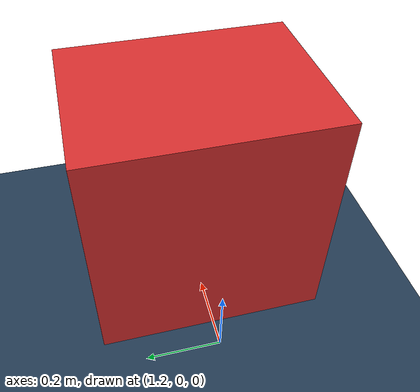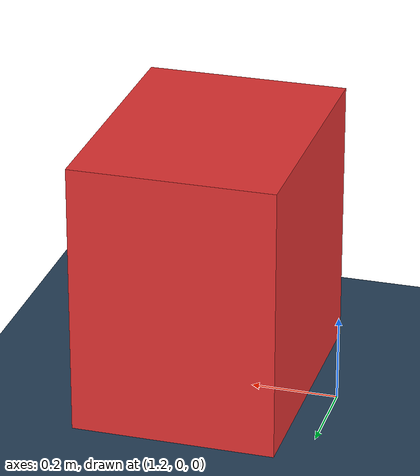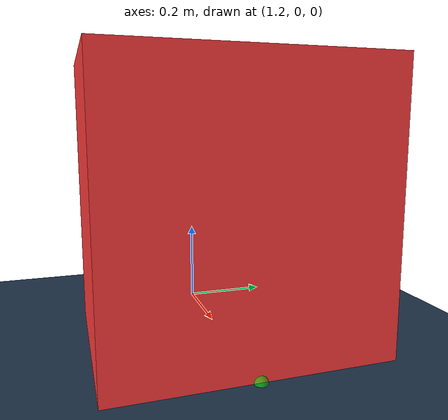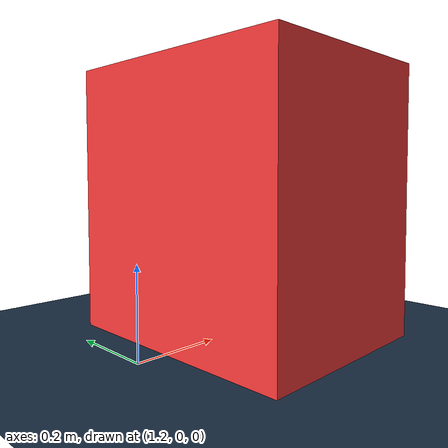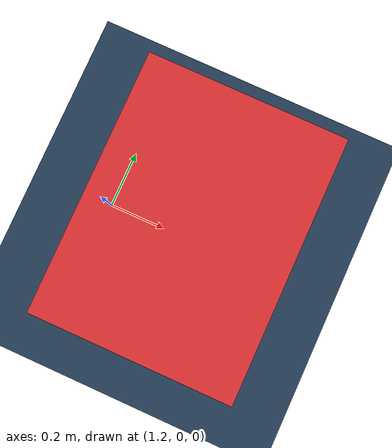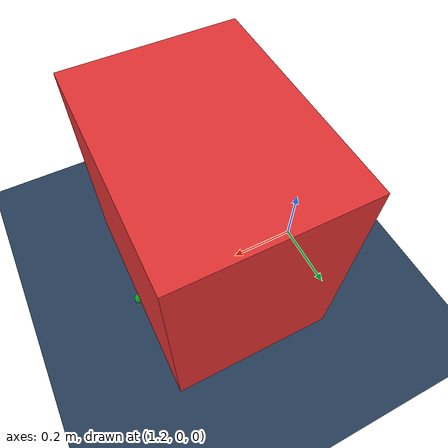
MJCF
<mujoco model="path_following_final">
  <asset>
    <texture type="skybox" builtin="gradient" rgb1="0.6 0.6 0.6" rgb2="0 0 0" width="512" height="512"/>
    <texture name="grid" type="2d" builtin="checker" rgb1="0.1 0.2 0.3" rgb2="0.2 0.3 0.4" width="300" height="300" mark="edge" markrgb="0.8 0.8 0.8"/>
    <material name="grid" texture="grid" texrepeat="1 1" texuniform="true" reflectance="0.2"/>
  </asset>

  <visual>
    <global offwidth="800" offheight="600"/>
  </visual>

  <worldbody>
    <light pos="0 0 3" dir="0 0 -1" diffuse="0.8 0.8 0.8" specular="0.2 0.2 0.2" directional="true"/>
    <geom name="floor" size="5 5 0.1" type="plane" material="grid" solimp="0.9 0.95 0.001 0.5 2" condim="4"/>

    <body name="box" pos="1.5 0 0.315">
      <freejoint name="box_joint"/>

      <geom name="box_geom" type="box" size="0.2325 0.305 0.315" rgba="0.9 0.2 0.2 1" solimp="0.9 0.95 0.001 0.5 2"/>

      <!-- Sensor site at the +x bottom edge (opposite the push edge) -->
      <site name="sensor_edge" pos="0.2325 0 -0.315" size="0.015" rgba="0 1 0 0.5"/>

      <inertial pos="0 0 0" mass="15.0" diaginertia="0.2403 0.1916 0.1839"/>
    </body>
  </worldbody>

</mujoco>
